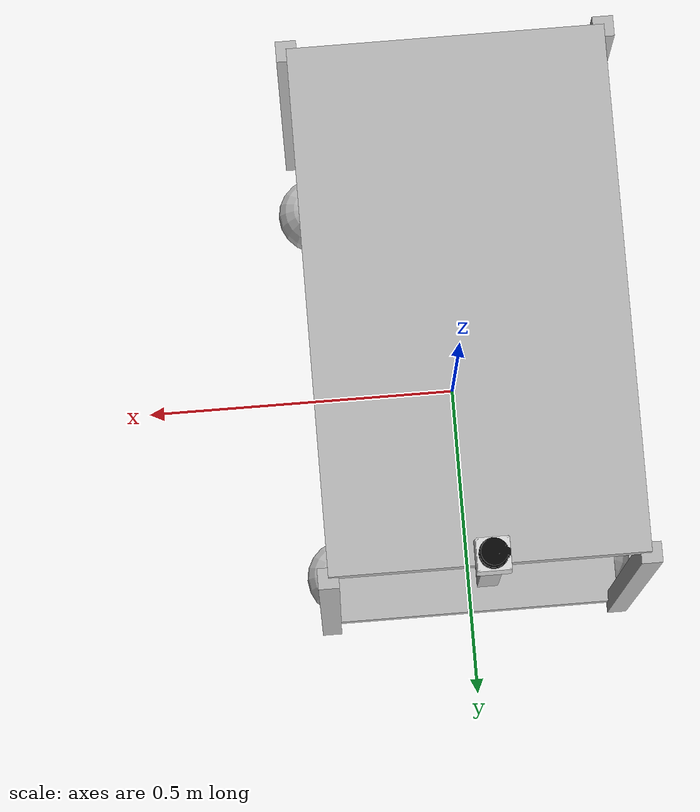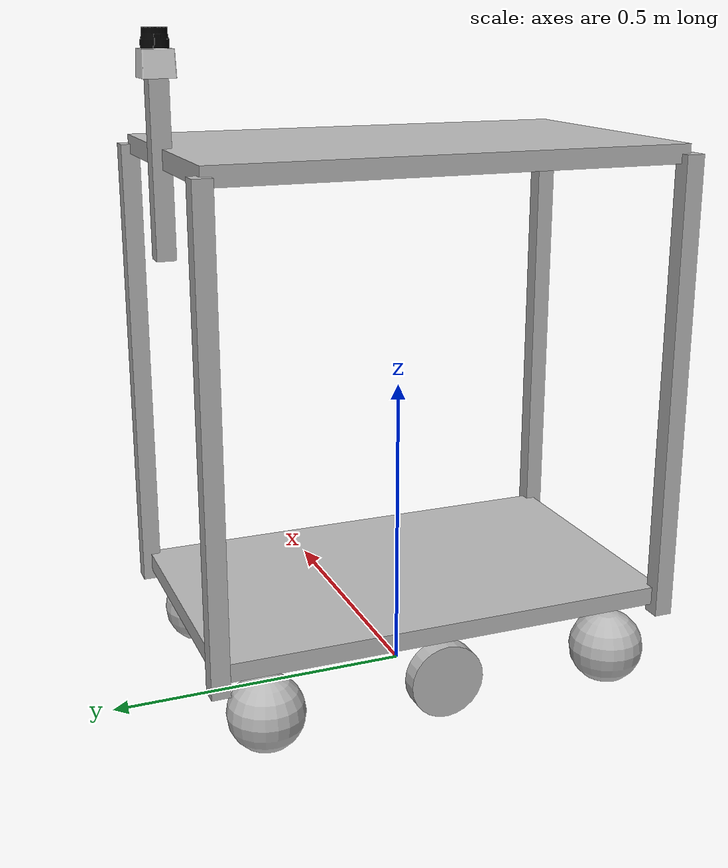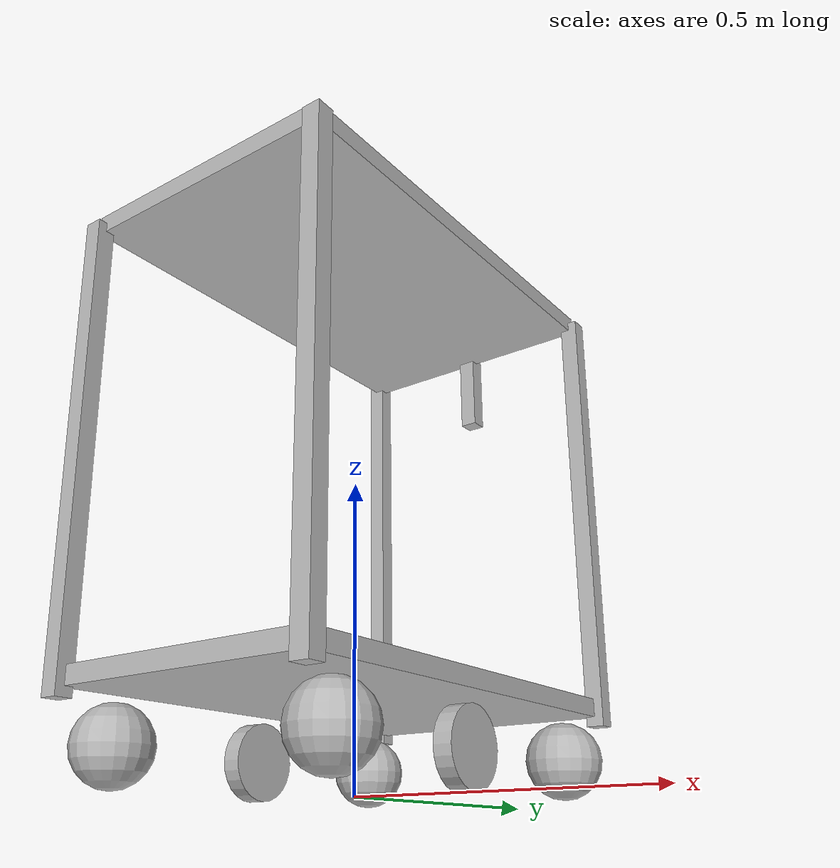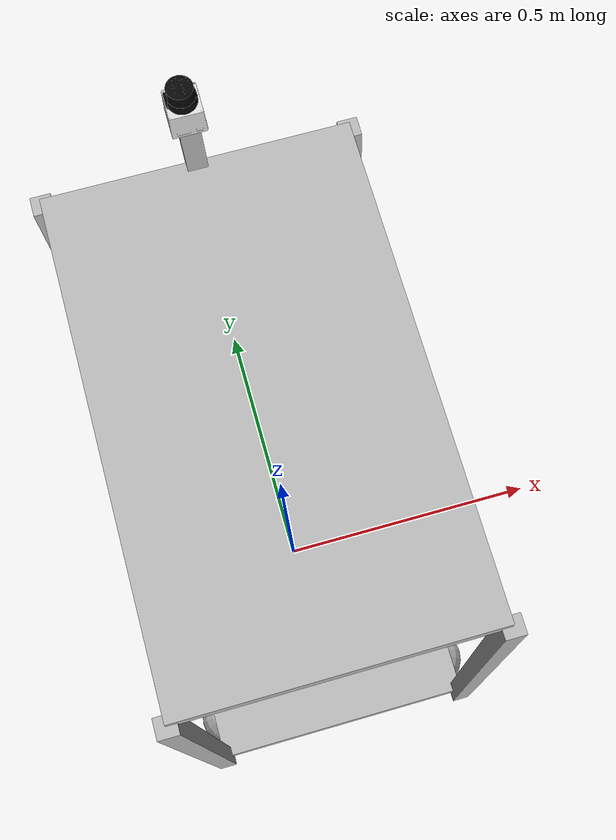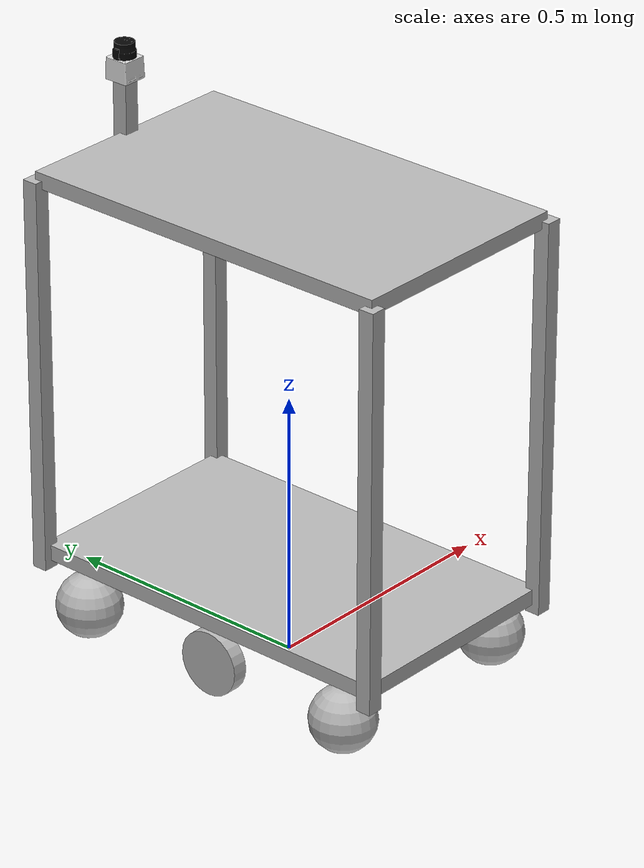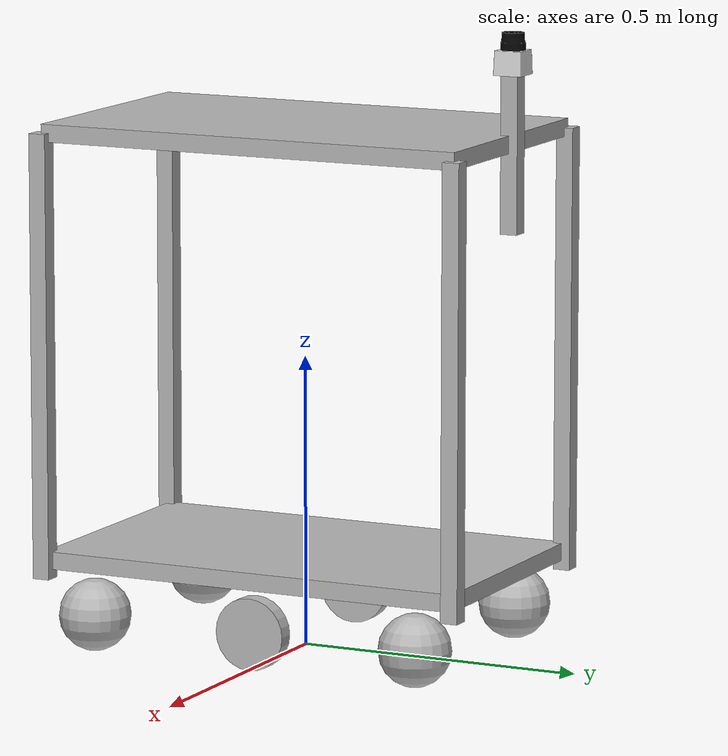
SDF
<?xml version = "1.0"?>
<sdf version='1.4'>

	<model name="Astro">

		<static>false</static>

		<link name="base_link">

		<!--Bottom bed of cart-->

			<pose> 0 0 .505 0 0 0 </pose>
			<inertial>
				<pose>0 0 -.3 0 0 0 </pose>
				<mass> 20 </mass>
			</inertial>

			<collision name="bottom_plate">
				<pose> 0 0 -.35 0 0 0 </pose>
				<geometry>
					<box>
						<size>.4572 .762 .03</size>
					</box>
				</geometry>
			</collision>

			<visual name="bottom_plate">
				<pose> 0 0 -.35 0 0 0 </pose>
				<geometry>
					<box>
          	<size>.4572 .762 .03</size>
					</box>
        </geometry>
			</visual>

				<collision name="lidar_pole">
				<pose> 0 .381 .381 0 0 0 </pose>
				<geometry>
					<box>
						<size>.03 .03 .3</size>
					</box>
				</geometry>
			</collision>

			<visual name="lidar_pole">
				<pose> 0 .381 .381 0 0 0 </pose>
				<geometry>
					<box>
          	<size>.03 .03 .3</size>
					</box>
        </geometry>
			</visual>

			<collision name="top_plate">
				<pose> 0 0 .381 0 0 0 </pose>
				<geometry>
					<box>
						<size>.4572 .762 .03</size>
					</box>
				</geometry>
			</collision>

			<visual name="top_plate">
				<pose> 0 0 .381 0 0 0 </pose>
				<geometry>
					<box>
          	<size>.4572 .762 .03</size>
					</box>
        </geometry>
			</visual>

			<collision name="caster_collision_1">
				<pose> -.2 -.3 -.442 0 0 0</pose>
				<geometry>
					<sphere>
						<radius>0.06191</radius>
					</sphere>
				</geometry>
				<surface>
              		<friction>
                		<ode>
                  			<mu>0</mu>
                  			<mu2>0</mu2>
                  			<slip1>1.0</slip1>
                  			<slip2>1.0</slip2>
                		</ode>
              		</friction>
            	</surface>
			</collision>

			<visual name="caster_visual_1">
				<pose>-.2 -.3 -.442 0 0 0</pose>
				<geometry>
                    <sphere>
                        <radius>0.06191</radius>
                	</sphere>
				</geometry>
			</visual>

			<collision name="caster_collision_2">
                <pose> .2 .3 -.442 0 0 0 </pose>
								<geometry>
                    <sphere>
                        <radius>0.06191</radius>
                		</sphere>
								</geometry>
								<surface>
                    <friction>
                        <ode>
                            <mu>0</mu>
                            <mu2>0</mu2>
                            <slip1>1.0</slip1>
                            <slip2>1.0</slip2>
                        </ode>
                    </friction>
                </surface>
            </collision>

			<visual name="caster_visual_2">
                <pose>.2 .3 -.442 0 0 0</pose>
				<geometry>
                    <sphere>
                        <radius>0.06191</radius>
                	</sphere>
				</geometry>
            </visual>

<collision name="caster_collision_3">
                <pose>-.2 .3 -.442 0 0 0</pose>
				<geometry>
                    <sphere>
                        <radius>0.06191</radius>
                	</sphere>
				</geometry>
				<surface>
                    <friction>
                        <ode>
                            <mu>0</mu>
                            <mu2>0</mu2>
                            <slip1>1.0</slip1>
                            <slip2>1.0</slip2>
                        </ode>
                    </friction>
                </surface>
            </collision>

			<visual name="caster_visual_3">
                <pose>-.2 .3 -.442 0 0 0</pose>
				<geometry>
                    <sphere>
                        <radius>0.06191</radius>
                	</sphere>
				</geometry>
            </visual>

			<collision name="caster_collision_4">
      	<pose>.2 -.3 -.442 0 0 0</pose>
					<geometry>
                    <sphere>
                        <radius>0.06191</radius>
                	</sphere>
					</geometry>
					<surface>
                <friction>
                        <ode>
                            <mu>0</mu>
                            <mu2>0</mu2>
                            <slip1>1.0</slip1>
                            <slip2>1.0</slip2>
                        </ode>
                    </friction>
                </surface>
      </collision>

			<visual name="caster_visual_4">
                <pose>.2 -.3 -.442 0 0 0</pose>
				<geometry>
                    <sphere>
                        <radius>0.06191</radius>
                	</sphere>
				</geometry>
       </visual>

		<collision name="pole1">
				<pose>-.2286 0.381 0 0 0 0</pose>
				<geometry>
					<box>
						<size>.03 .03 .762</size>
					</box>
				</geometry>
			</collision>

			<visual name="pole1">
				<pose>-.2286 0.381 0 0 0 0 </pose>
				<geometry>
					<box>
          	<size>.03 .03 .762</size>
					</box>
        </geometry>
			</visual>

<collision name="pole2">
				<pose>.2286 0.381 0 0 0 0 </pose>
				<geometry>
					<box>
						<size>.03 .03 .762</size>
					</box>
				</geometry>
			</collision>

			<visual name="pole2">
				<pose>.2286 0.381 0 0 0 0</pose>
				<geometry>
					<box>
          	<size>.03 .03 .762</size>
					</box>
        </geometry>
			</visual>

<collision name="pole3">
				<pose>.2286 -0.381 0 0 0 0 </pose>
				<geometry>
					<box>
						<size>.03 .03 .762</size>
					</box>
				</geometry>
			</collision>

			<visual name="pole3">
				<pose>.2286 -0.381 0 0 0 0</pose>
				<geometry>
					<box>
          	<size>.03 .03 .762</size>
					</box>
        </geometry>
			</visual>

<collision name="pole4">
				<pose>.2286 -0.381 0 0 0 0 </pose>
				<geometry>
					<box>
						<size>.03 .03 .762</size>
					</box>
				</geometry>
			</collision>

			<visual name="pole4">
				<pose>-.2286 -0.381 0 0 0 0</pose>
				<geometry>
					<box>
          	<size>.03 .03 .762</size>
					</box>
        </geometry>
			</visual>

		</link>

		<link name="left_wheel">

			<pose> -.2 0 .061 0 1.57 0 </pose>
			<inertial>
				<mass>0.5</mass>
			</inertial>
			<collision name="collision">
                <geometry>
                    <cylinder>
                        <radius>0.06191</radius>
                        <length>0.03</length>
                    </cylinder>
                </geometry>
            </collision>

			<visual name="visual">
                <geometry>
                    <cylinder>
                        <radius>0.06191</radius>
                        <length>0.03</length>
                    </cylinder>
                </geometry>
            </visual>
		</link>

		<link name="right_wheel">

            <pose> .2 0 .061 0 1.57 0 </pose>
						<inertial>
							<mass>0.5</mass>
						</inertial>
            <collision name="collision">
                <geometry>
                    <cylinder>
                        <radius>0.06191</radius>
                        <length>0.03</length>
                    </cylinder>
                </geometry>
            </collision>

            <visual name="visual">
                <geometry>
                    <cylinder>
                        <radius>0.06191</radius>
                        <length>0.03</length>
                    </cylinder>
                </geometry>
            </visual>
    </link>

		<joint type="revolute" name="left_wheel_hinge">
			<pose>0 0 0 0 0 0 </pose>
			<child>left_wheel</child>
			<parent>base_link</parent>
			<axis>
				<xyz> -1 0 0 </xyz>
			</axis>
		</joint>

		<joint type="revolute" name="right_wheel_hinge">
            <pose>0 0 0 0 0 0 </pose>
            <child>right_wheel</child>
            <parent>base_link</parent>
            <axis>
                <xyz> -1 0 0 </xyz>
            </axis>
        </joint>

    <joint name="hokuyo_joint" type="fixed">
      <child>hokuyo_link</child>
      <parent>base_link</parent>
    </joint>

	<link name="hokuyo_link">
		<pose>0 .381 1.036 0 0 0</pose>
		<inertial>
			<mass>0.1</mass>
		</inertial>

		<visual name="visual">
		<geometry>
        	  <mesh>
            	<uri>model://hokuyo/meshes/hokuyo.dae</uri>
          	</mesh>
        	</geometry>
     	 </visual>

	<sensor name="head_hokuyo_sensor" type="ray">
        <pose>0 0 0 0 0 0</pose>
        <ray>
          <scan>
            <horizontal>
              <samples>640</samples>
              <resolution>1</resolution>
              <min_angle>-3.14159</min_angle>
              <max_angle>3.14159</max_angle>
            </horizontal>
          </scan>
          <range>
            <min>0.08</min>
            <max>8</max>
            <resolution>0.01</resolution>
          </range>
        </ray>

        <plugin name="laser" filename="libRayPlugin.so" />
    		<always_on>1</always_on>
        	<update_rate>30</update_rate>
			<visualize>false</visualize>

		<plugin name="gazebo_ros_head_hokuyo_controller" filename="libgazebo_ros_laser.so">
			<topicName>scan</topicName>
			<frameName>Astro/hokuyo_link</frameName>
		</plugin>
	</sensor>

 </link>

	<plugin name="differential_drive_controller" filename="libgazebo_ros_diff_drive.so">

		<legacyMode>false</legacyMode>

		<alwaysOn>true</alwaysOn>

		<updateRate>30</updateRate>

		<leftJoint>left_wheel_hinge</leftJoint>

		<rightJoint>right_wheel_hinge</rightJoint>

		<wheelSeparation>.4</wheelSeparation>

		<wheelDiameter>.12382</wheelDiameter>

		<wheelTorque>15</wheelTorque>

		<commandTopic>cmd_vel</commandTopic>

		<odometryTopic>odom</odometryTopic>

		<odometryFrame>odom</odometryFrame>

		<robotBaseFrame>base_link</robotBaseFrame>

	</plugin>
</model>
</sdf>
